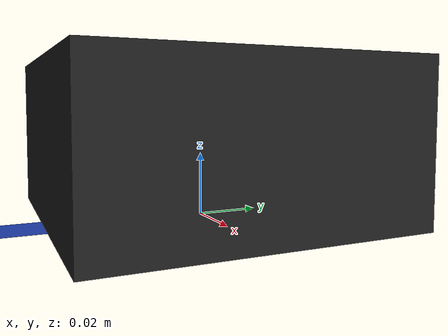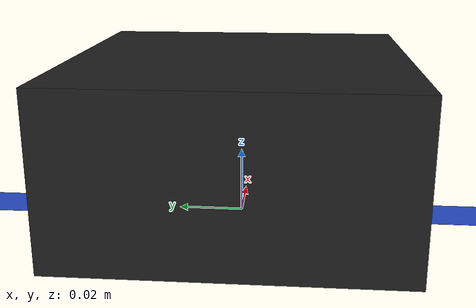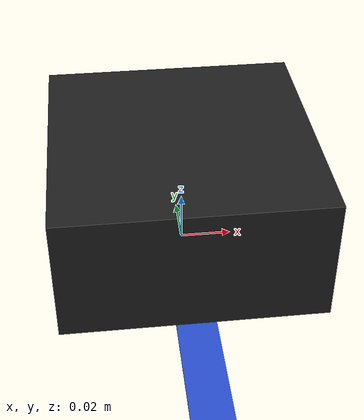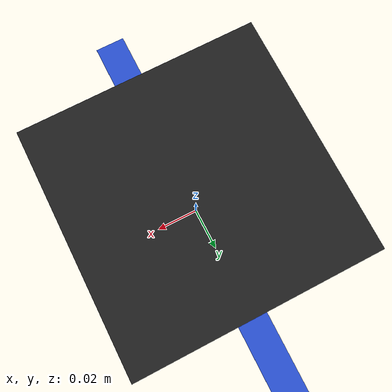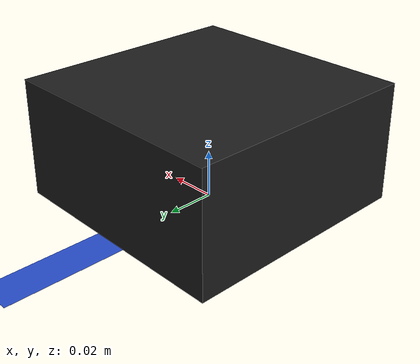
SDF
<?xml version="1.0" ?>
<sdf version="1.5">
  <model name="hac_ball_table_5cm">
    <static>true</static>
    <link name="link">
      <!-- box half height + tape height(0.0001)-->
      <pose>0 0 0.0251 0 0 0</pose>
      <inertial>
        <mass>1.0</mass>
        <inertia>
          <ixx>1.0e-03</ixx>
          <ixy>0</ixy>
          <ixz>0</ixz>
          <iyy>1.0e-03</iyy>
          <iyz>0</iyz>
          <izz>1.0e-03</izz>
        </inertia>
      </inertial>

      <collision name="collision">
        <geometry>
          <box>
            <size>0.1 0.1 0.05</size>
          </box>
        </geometry>
      </collision>

      <visual name="visual">
        <geometry>
          <box>
            <size>0.1 0.1 0.05</size>
          </box>
        </geometry>
        <material>
          <script>
            <uri>file://media/materials/scripts/gazebo.material</uri>
            <name>Gazebo/Black</name>
          </script>
        </material>
      </visual>
    </link>

    <include>
      <uri>model://hac_blue_tape</uri>
      <pose>0 0 0 0 0 1.5708</pose>
    </include>

    <joint name="joint" type="fixed">
      <parent>hac_blue_tape::link</parent>
      <child>hac_ball_table_5cm::link</child>
      <pose>0 0 0 0 0 0</pose>
    </joint>

  </model>
</sdf>

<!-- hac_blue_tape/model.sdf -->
<sdf version="1.5">
  <model name="hac_blue_tape">
    <link name="link">
      <pose>0 0 0.00005 0 0 0</pose>
      <inertial>
        <mass>0.001</mass>
        <inertia>
          <ixx>1.8751e-8</ixx>
          <ixy>0</ixy>
          <ixz>0</ixz>
          <iyy>6.7500e-5</iyy>
          <iyz>0</iyz>
          <izz>6.7519e-5</izz>
        </inertia>
      </inertial>

      <collision name='collision'>
        <geometry>
          <box>
            <size>0.9 0.015 0.0001</size>
          </box>
        </geometry>
      </collision>

      <visual name='visual'>
        <geometry>
          <box>
            <size>0.9 0.015 0.0001</size>
          </box>
        </geometry>
        <material>
          <script>
            <uri>file://media/materials/scripts/gazebo.material</uri>
            <name>Gazebo/Blue</name>
          </script>
        </material>
      </visual>
    </link>

  </model>
</sdf>
